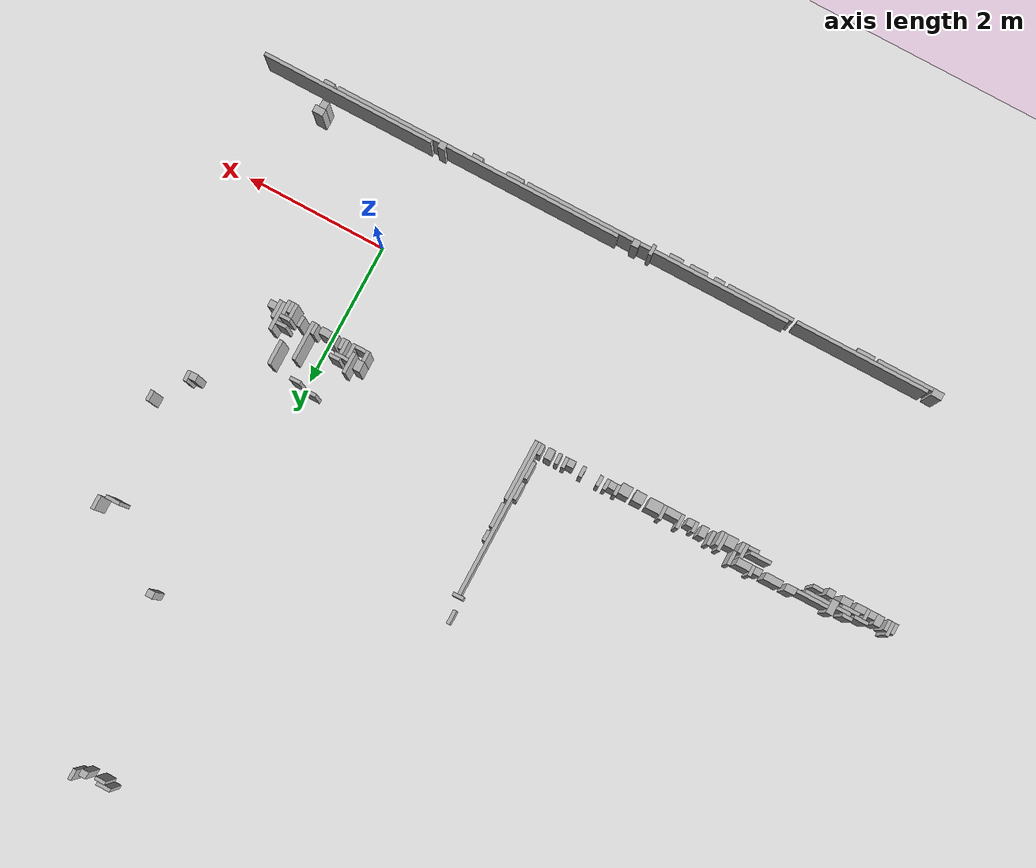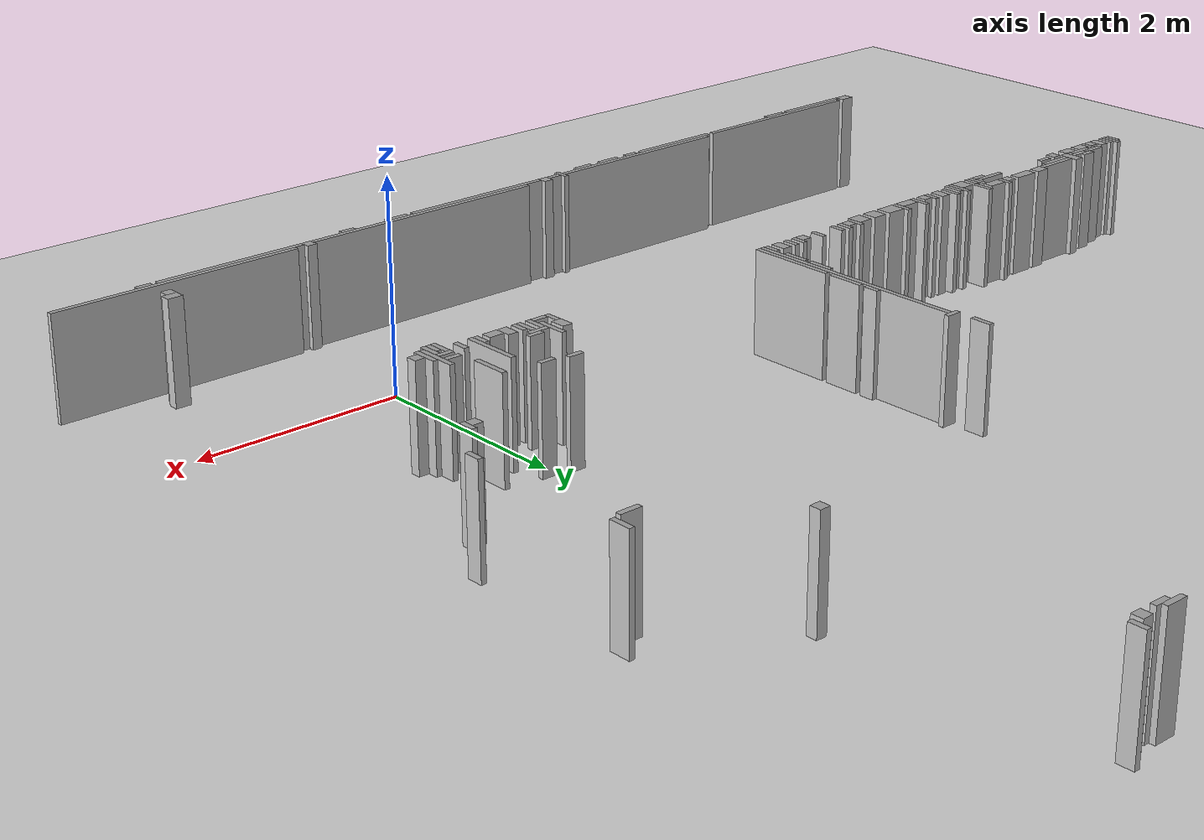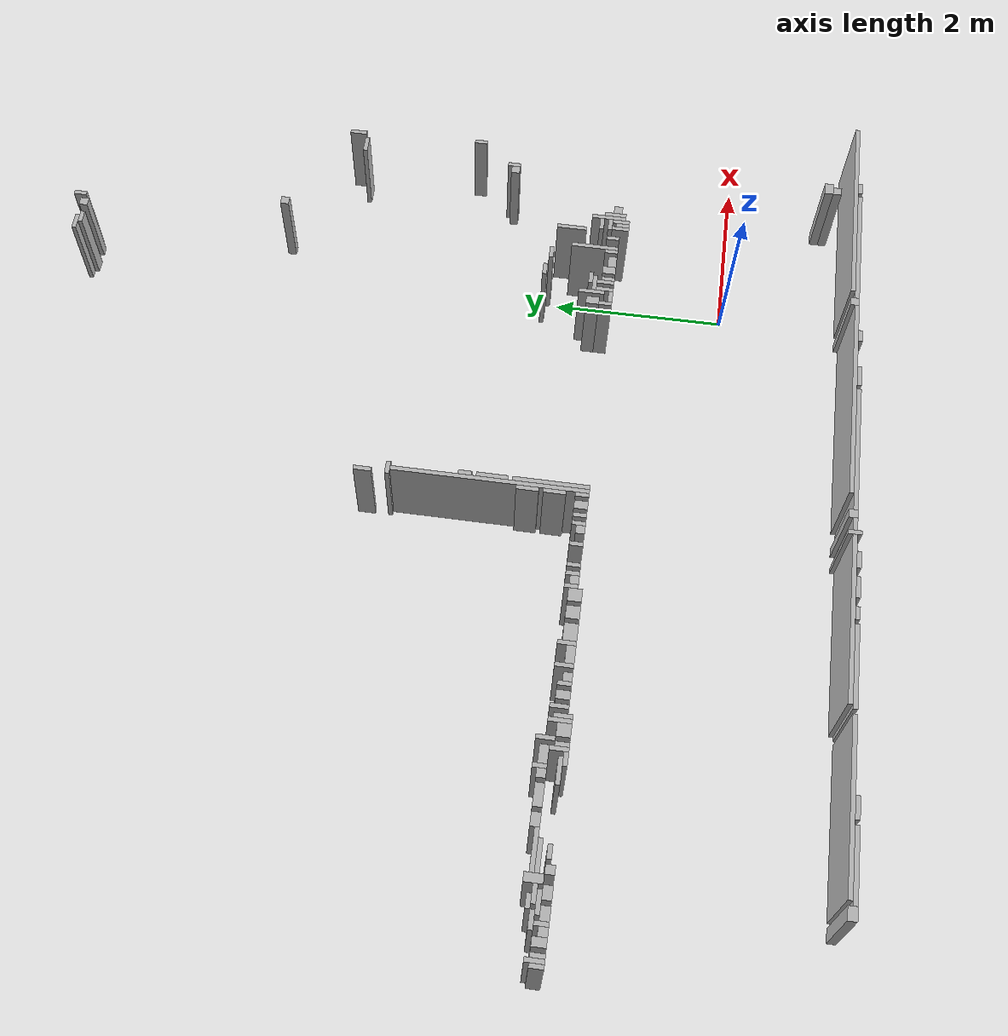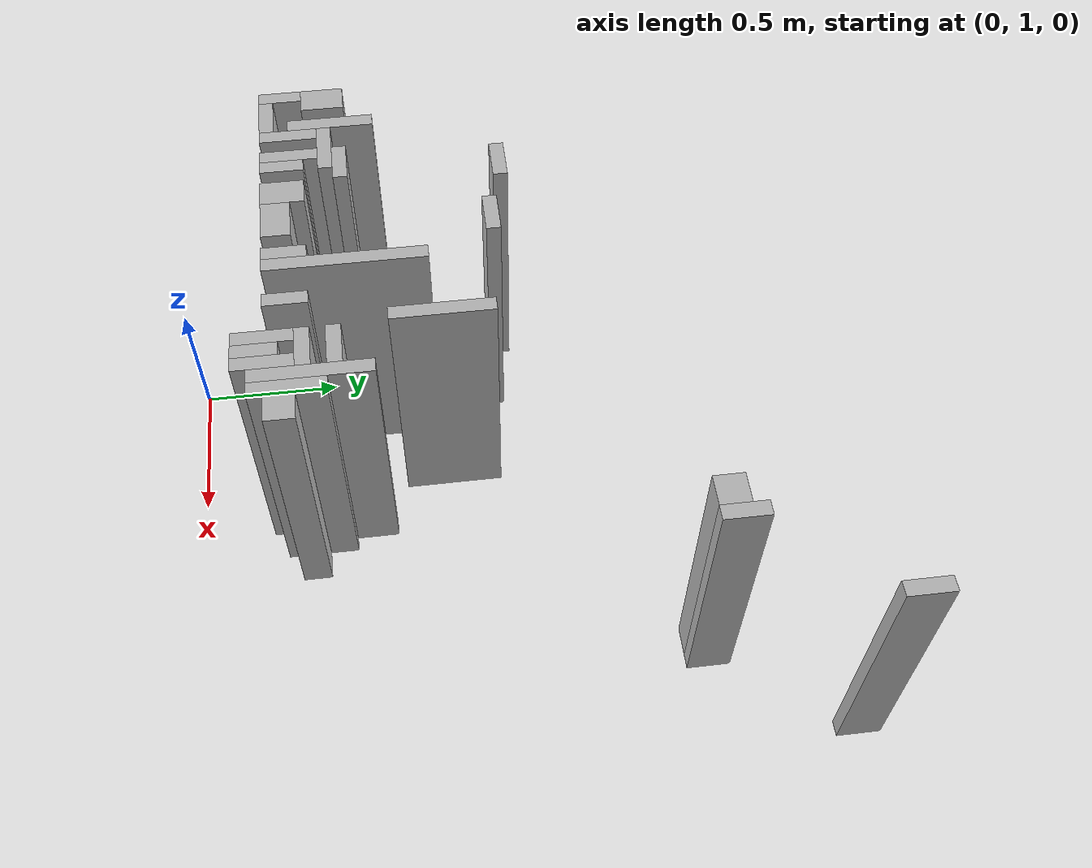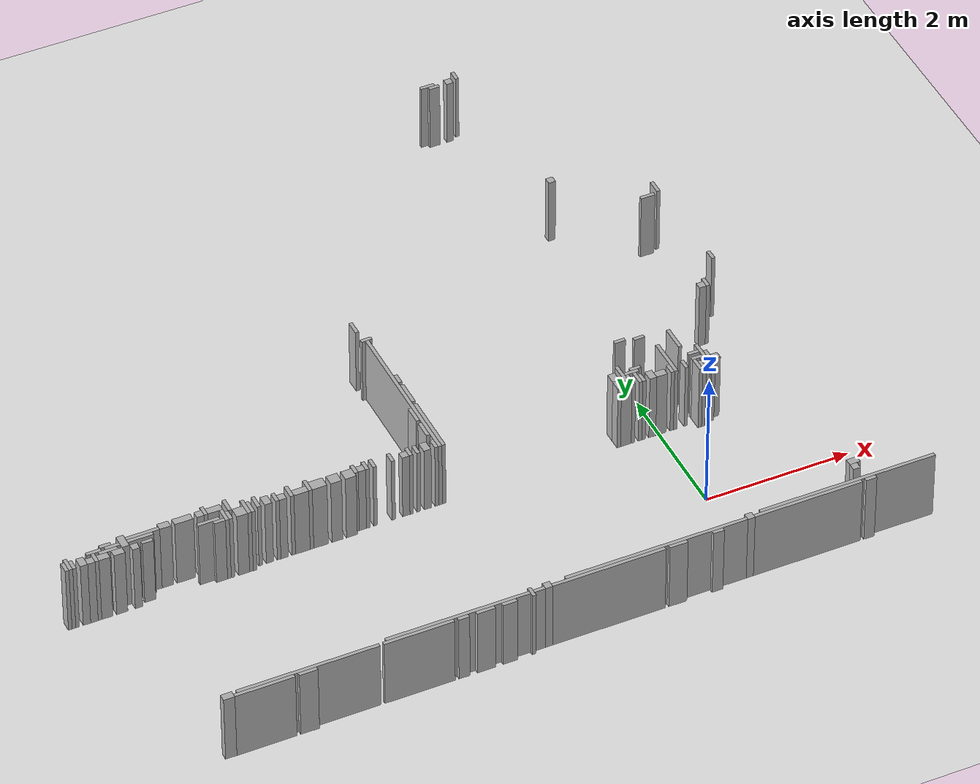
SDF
<sdf version="1.8">
 <world name="building">
  <model name="ground_plane">
   <static>true</static>
   <link name="link">
    <collision name="c"><geometry><plane><normal>0 0 1</normal><size>200 200</size></plane></geometry></collision>
    <visual name="v">
     <geometry><plane><normal>0 0 1</normal><size>200 200</size></plane></geometry>
     <material><ambient>0.9 0.9 0.9 1</ambient><diffuse>0.9 0.9 0.9 1</diffuse></material>
    </visual>
   </link>
  </model>
  <model name="walls">
   <static>true</static>
   <link name="wall_0">
    <pose>0.175 7.875 0.500 0 0 0</pose>
    <collision name="c"><geometry><box><size>0.050 0.150 1.000</size></box></geometry></collision>
    <visual name="v">
     <geometry><box><size>0.050 0.150 1.000</size></box></geometry>
     <material><ambient>0.6 0.6 0.6 1</ambient><diffuse>0.7 0.7 0.7 1</diffuse></material>
    </visual>
   </link>
   <link name="wall_1">
    <pose>-0.250 7.825 0.500 0 0 0</pose>
    <collision name="c"><geometry><box><size>0.200 0.050 1.000</size></box></geometry></collision>
    <visual name="v">
     <geometry><box><size>0.200 0.050 1.000</size></box></geometry>
     <material><ambient>0.6 0.6 0.6 1</ambient><diffuse>0.7 0.7 0.7 1</diffuse></material>
    </visual>
   </link>
   <link name="wall_2">
    <pose>0.050 7.800 0.500 0 0 0</pose>
    <collision name="c"><geometry><box><size>0.100 0.100 1.000</size></box></geometry></collision>
    <visual name="v">
     <geometry><box><size>0.100 0.100 1.000</size></box></geometry>
     <material><ambient>0.6 0.6 0.6 1</ambient><diffuse>0.7 0.7 0.7 1</diffuse></material>
    </visual>
   </link>
   <link name="wall_3">
    <pose>-0.175 7.775 0.500 0 0 0</pose>
    <collision name="c"><geometry><box><size>0.150 0.050 1.000</size></box></geometry></collision>
    <visual name="v">
     <geometry><box><size>0.150 0.050 1.000</size></box></geometry>
     <material><ambient>0.6 0.6 0.6 1</ambient><diffuse>0.7 0.7 0.7 1</diffuse></material>
    </visual>
   </link>
   <link name="wall_4">
    <pose>0.400 5.400 0.500 0 0 0</pose>
    <collision name="c"><geometry><box><size>0.100 0.100 1.000</size></box></geometry></collision>
    <visual name="v">
     <geometry><box><size>0.100 0.100 1.000</size></box></geometry>
     <material><ambient>0.6 0.6 0.6 1</ambient><diffuse>0.7 0.7 0.7 1</diffuse></material>
    </visual>
   </link>
   <link name="wall_5">
    <pose>1.575 4.700 0.500 0 0 0</pose>
    <collision name="c"><geometry><box><size>0.050 0.200 1.000</size></box></geometry></collision>
    <visual name="v">
     <geometry><box><size>0.050 0.200 1.000</size></box></geometry>
     <material><ambient>0.6 0.6 0.6 1</ambient><diffuse>0.7 0.7 0.7 1</diffuse></material>
    </visual>
   </link>
   <link name="wall_6">
    <pose>1.400 4.575 0.500 0 0 0</pose>
    <collision name="c"><geometry><box><size>0.200 0.050 1.000</size></box></geometry></collision>
    <visual name="v">
     <geometry><box><size>0.200 0.050 1.000</size></box></geometry>
     <material><ambient>0.6 0.6 0.6 1</ambient><diffuse>0.7 0.7 0.7 1</diffuse></material>
    </visual>
   </link>
   <link name="wall_9">
    <pose>-3.125 3.850 0.500 0 0 0</pose>
    <collision name="c"><geometry><box><size>0.050 0.200 1.000</size></box></geometry></collision>
    <visual name="v">
     <geometry><box><size>0.050 0.200 1.000</size></box></geometry>
     <material><ambient>0.6 0.6 0.6 1</ambient><diffuse>0.7 0.7 0.7 1</diffuse></material>
    </visual>
   </link>
   <link name="wall_10">
    <pose>-3.075 3.575 0.500 0 0 0</pose>
    <collision name="c"><geometry><box><size>0.150 0.050 1.000</size></box></geometry></collision>
    <visual name="v">
     <geometry><box><size>0.150 0.050 1.000</size></box></geometry>
     <material><ambient>0.6 0.6 0.6 1</ambient><diffuse>0.7 0.7 0.7 1</diffuse></material>
    </visual>
   </link>
   <link name="wall_11">
    <pose>-3.075 2.450 0.500 0 0 0</pose>
    <collision name="c"><geometry><box><size>0.050 2.200 1.000</size></box></geometry></collision>
    <visual name="v">
     <geometry><box><size>0.050 2.200 1.000</size></box></geometry>
     <material><ambient>0.6 0.6 0.6 1</ambient><diffuse>0.7 0.7 0.7 1</diffuse></material>
    </visual>
   </link>
   <link name="wall_13">
    <pose>1.625 3.175 0.500 0 0 0</pose>
    <collision name="c"><geometry><box><size>0.050 0.150 1.000</size></box></geometry></collision>
    <visual name="v">
     <geometry><box><size>0.050 0.150 1.000</size></box></geometry>
     <material><ambient>0.6 0.6 0.6 1</ambient><diffuse>0.7 0.7 0.7 1</diffuse></material>
    </visual>
   </link>
   <link name="wall_19">
    <pose>-3.025 2.725 0.500 0 0 0</pose>
    <collision name="c"><geometry><box><size>0.050 0.150 1.000</size></box></geometry></collision>
    <visual name="v">
     <geometry><box><size>0.050 0.150 1.000</size></box></geometry>
     <material><ambient>0.6 0.6 0.6 1</ambient><diffuse>0.7 0.7 0.7 1</diffuse></material>
    </visual>
   </link>
   <link name="wall_20">
    <pose>1.325 2.725 0.500 0 0 0</pose>
    <collision name="c"><geometry><box><size>0.050 0.150 1.000</size></box></geometry></collision>
    <visual name="v">
     <geometry><box><size>0.050 0.150 1.000</size></box></geometry>
     <material><ambient>0.6 0.6 0.6 1</ambient><diffuse>0.7 0.7 0.7 1</diffuse></material>
    </visual>
   </link>
   <link name="wall_22">
    <pose>1.250 2.700 0.500 0 0 0</pose>
    <collision name="c"><geometry><box><size>0.100 0.100 1.000</size></box></geometry></collision>
    <visual name="v">
     <geometry><box><size>0.100 0.100 1.000</size></box></geometry>
     <material><ambient>0.6 0.6 0.6 1</ambient><diffuse>0.7 0.7 0.7 1</diffuse></material>
    </visual>
   </link>
   <link name="wall_34">
    <pose>-3.025 2.425 0.500 0 0 0</pose>
    <collision name="c"><geometry><box><size>0.050 0.350 1.000</size></box></geometry></collision>
    <visual name="v">
     <geometry><box><size>0.050 0.350 1.000</size></box></geometry>
     <material><ambient>0.6 0.6 0.6 1</ambient><diffuse>0.7 0.7 0.7 1</diffuse></material>
    </visual>
   </link>
   <link name="wall_52">
    <pose>-3.025 1.775 0.500 0 0 0</pose>
    <collision name="c"><geometry><box><size>0.050 0.850 1.000</size></box></geometry></collision>
    <visual name="v">
     <geometry><box><size>0.050 0.850 1.000</size></box></geometry>
     <material><ambient>0.6 0.6 0.6 1</ambient><diffuse>0.7 0.7 0.7 1</diffuse></material>
    </visual>
   </link>
   <link name="wall_53">
    <pose>-0.175 2.175 0.500 0 0 0</pose>
    <collision name="c"><geometry><box><size>0.150 0.050 1.000</size></box></geometry></collision>
    <visual name="v">
     <geometry><box><size>0.150 0.050 1.000</size></box></geometry>
     <material><ambient>0.6 0.6 0.6 1</ambient><diffuse>0.7 0.7 0.7 1</diffuse></material>
    </visual>
   </link>
   <link name="wall_58">
    <pose>-3.125 2.025 0.500 0 0 0</pose>
    <collision name="c"><geometry><box><size>0.050 0.250 1.000</size></box></geometry></collision>
    <visual name="v">
     <geometry><box><size>0.050 0.250 1.000</size></box></geometry>
     <material><ambient>0.6 0.6 0.6 1</ambient><diffuse>0.7 0.7 0.7 1</diffuse></material>
    </visual>
   </link>
   <link name="wall_59">
    <pose>0.075 2.125 0.500 0 0 0</pose>
    <collision name="c"><geometry><box><size>0.150 0.050 1.000</size></box></geometry></collision>
    <visual name="v">
     <geometry><box><size>0.150 0.050 1.000</size></box></geometry>
     <material><ambient>0.6 0.6 0.6 1</ambient><diffuse>0.7 0.7 0.7 1</diffuse></material>
    </visual>
   </link>
   <link name="wall_64">
    <pose>0.475 1.925 0.500 0 0 0</pose>
    <collision name="c"><geometry><box><size>0.050 0.350 1.000</size></box></geometry></collision>
    <visual name="v">
     <geometry><box><size>0.050 0.350 1.000</size></box></geometry>
     <material><ambient>0.6 0.6 0.6 1</ambient><diffuse>0.7 0.7 0.7 1</diffuse></material>
    </visual>
   </link>
   <link name="wall_86">
    <pose>0.225 1.625 0.500 0 0 0</pose>
    <collision name="c"><geometry><box><size>0.050 0.550 1.000</size></box></geometry></collision>
    <visual name="v">
     <geometry><box><size>0.050 0.550 1.000</size></box></geometry>
     <material><ambient>0.6 0.6 0.6 1</ambient><diffuse>0.7 0.7 0.7 1</diffuse></material>
    </visual>
   </link>
   <link name="wall_90">
    <pose>-3.125 1.725 0.500 0 0 0</pose>
    <collision name="c"><geometry><box><size>0.050 0.250 1.000</size></box></geometry></collision>
    <visual name="v">
     <geometry><box><size>0.050 0.250 1.000</size></box></geometry>
     <material><ambient>0.6 0.6 0.6 1</ambient><diffuse>0.7 0.7 0.7 1</diffuse></material>
    </visual>
   </link>
   <link name="wall_96">
    <pose>-0.425 1.600 0.500 0 0 0</pose>
    <collision name="c"><geometry><box><size>0.050 0.300 1.000</size></box></geometry></collision>
    <visual name="v">
     <geometry><box><size>0.050 0.300 1.000</size></box></geometry>
     <material><ambient>0.6 0.6 0.6 1</ambient><diffuse>0.7 0.7 0.7 1</diffuse></material>
    </visual>
   </link>
   <link name="wall_101">
    <pose>0.675 1.500 0.500 0 0 0</pose>
    <collision name="c"><geometry><box><size>0.050 0.400 1.000</size></box></geometry></collision>
    <visual name="v">
     <geometry><box><size>0.050 0.400 1.000</size></box></geometry>
     <material><ambient>0.6 0.6 0.6 1</ambient><diffuse>0.7 0.7 0.7 1</diffuse></material>
    </visual>
   </link>
   <link name="wall_117">
    <pose>-0.550 1.575 0.500 0 0 0</pose>
    <collision name="c"><geometry><box><size>0.100 0.150 1.000</size></box></geometry></collision>
    <visual name="v">
     <geometry><box><size>0.100 0.150 1.000</size></box></geometry>
     <material><ambient>0.6 0.6 0.6 1</ambient><diffuse>0.7 0.7 0.7 1</diffuse></material>
    </visual>
   </link>
   <link name="wall_118">
    <pose>-0.225 1.625 0.500 0 0 0</pose>
    <collision name="c"><geometry><box><size>0.150 0.050 1.000</size></box></geometry></collision>
    <visual name="v">
     <geometry><box><size>0.150 0.050 1.000</size></box></geometry>
     <material><ambient>0.6 0.6 0.6 1</ambient><diffuse>0.7 0.7 0.7 1</diffuse></material>
    </visual>
   </link>
   <link name="wall_143">
    <pose>-6.225 1.525 0.500 0 0 0</pose>
    <collision name="c"><geometry><box><size>0.050 0.150 1.000</size></box></geometry></collision>
    <visual name="v">
     <geometry><box><size>0.050 0.150 1.000</size></box></geometry>
     <material><ambient>0.6 0.6 0.6 1</ambient><diffuse>0.7 0.7 0.7 1</diffuse></material>
    </visual>
   </link>
   <link name="wall_144">
    <pose>-5.925 1.500 0.500 0 0 0</pose>
    <collision name="c"><geometry><box><size>0.050 0.200 1.000</size></box></geometry></collision>
    <visual name="v">
     <geometry><box><size>0.050 0.200 1.000</size></box></geometry>
     <material><ambient>0.6 0.6 0.6 1</ambient><diffuse>0.7 0.7 0.7 1</diffuse></material>
    </visual>
   </link>
   <link name="wall_145">
    <pose>-0.300 1.575 0.500 0 0 0</pose>
    <collision name="c"><geometry><box><size>0.200 0.050 1.000</size></box></geometry></collision>
    <visual name="v">
     <geometry><box><size>0.200 0.050 1.000</size></box></geometry>
     <material><ambient>0.6 0.6 0.6 1</ambient><diffuse>0.7 0.7 0.7 1</diffuse></material>
    </visual>
   </link>
   <link name="wall_146">
    <pose>0.575 1.575 0.500 0 0 0</pose>
    <collision name="c"><geometry><box><size>0.150 0.050 1.000</size></box></geometry></collision>
    <visual name="v">
     <geometry><box><size>0.150 0.050 1.000</size></box></geometry>
     <material><ambient>0.6 0.6 0.6 1</ambient><diffuse>0.7 0.7 0.7 1</diffuse></material>
    </visual>
   </link>
   <link name="wall_173">
    <pose>-7.350 1.450 0.500 0 0 0</pose>
    <collision name="c"><geometry><box><size>0.100 0.200 1.000</size></box></geometry></collision>
    <visual name="v">
     <geometry><box><size>0.100 0.200 1.000</size></box></geometry>
     <material><ambient>0.6 0.6 0.6 1</ambient><diffuse>0.7 0.7 0.7 1</diffuse></material>
    </visual>
   </link>
   <link name="wall_174">
    <pose>-6.775 1.500 0.500 0 0 0</pose>
    <collision name="c"><geometry><box><size>0.150 0.100 1.000</size></box></geometry></collision>
    <visual name="v">
     <geometry><box><size>0.150 0.100 1.000</size></box></geometry>
     <material><ambient>0.6 0.6 0.6 1</ambient><diffuse>0.7 0.7 0.7 1</diffuse></material>
    </visual>
   </link>
   <link name="wall_175">
    <pose>-6.525 1.500 0.500 0 0 0</pose>
    <collision name="c"><geometry><box><size>0.250 0.100 1.000</size></box></geometry></collision>
    <visual name="v">
     <geometry><box><size>0.250 0.100 1.000</size></box></geometry>
     <material><ambient>0.6 0.6 0.6 1</ambient><diffuse>0.7 0.7 0.7 1</diffuse></material>
    </visual>
   </link>
   <link name="wall_176">
    <pose>-6.300 1.500 0.500 0 0 0</pose>
    <collision name="c"><geometry><box><size>0.100 0.100 1.000</size></box></geometry></collision>
    <visual name="v">
     <geometry><box><size>0.100 0.100 1.000</size></box></geometry>
     <material><ambient>0.6 0.6 0.6 1</ambient><diffuse>0.7 0.7 0.7 1</diffuse></material>
    </visual>
   </link>
   <link name="wall_177">
    <pose>-6.100 1.500 0.500 0 0 0</pose>
    <collision name="c"><geometry><box><size>0.200 0.100 1.000</size></box></geometry></collision>
    <visual name="v">
     <geometry><box><size>0.200 0.100 1.000</size></box></geometry>
     <material><ambient>0.6 0.6 0.6 1</ambient><diffuse>0.7 0.7 0.7 1</diffuse></material>
    </visual>
   </link>
   <link name="wall_178">
    <pose>-0.375 1.450 0.500 0 0 0</pose>
    <collision name="c"><geometry><box><size>0.050 0.200 1.000</size></box></geometry></collision>
    <visual name="v">
     <geometry><box><size>0.050 0.200 1.000</size></box></geometry>
     <material><ambient>0.6 0.6 0.6 1</ambient><diffuse>0.7 0.7 0.7 1</diffuse></material>
    </visual>
   </link>
   <link name="wall_179">
    <pose>-0.275 1.450 0.500 0 0 0</pose>
    <collision name="c"><geometry><box><size>0.050 0.200 1.000</size></box></geometry></collision>
    <visual name="v">
     <geometry><box><size>0.050 0.200 1.000</size></box></geometry>
     <material><ambient>0.6 0.6 0.6 1</ambient><diffuse>0.7 0.7 0.7 1</diffuse></material>
    </visual>
   </link>
   <link name="wall_180">
    <pose>0.725 1.425 0.500 0 0 0</pose>
    <collision name="c"><geometry><box><size>0.050 0.250 1.000</size></box></geometry></collision>
    <visual name="v">
     <geometry><box><size>0.050 0.250 1.000</size></box></geometry>
     <material><ambient>0.6 0.6 0.6 1</ambient><diffuse>0.7 0.7 0.7 1</diffuse></material>
    </visual>
   </link>
   <link name="wall_194">
    <pose>-7.575 1.475 0.500 0 0 0</pose>
    <collision name="c"><geometry><box><size>0.150 0.050 1.000</size></box></geometry></collision>
    <visual name="v">
     <geometry><box><size>0.150 0.050 1.000</size></box></geometry>
     <material><ambient>0.6 0.6 0.6 1</ambient><diffuse>0.7 0.7 0.7 1</diffuse></material>
    </visual>
   </link>
   <link name="wall_195">
    <pose>-7.075 1.475 0.500 0 0 0</pose>
    <collision name="c"><geometry><box><size>0.450 0.050 1.000</size></box></geometry></collision>
    <visual name="v">
     <geometry><box><size>0.450 0.050 1.000</size></box></geometry>
     <material><ambient>0.6 0.6 0.6 1</ambient><diffuse>0.7 0.7 0.7 1</diffuse></material>
    </visual>
   </link>
   <link name="wall_196">
    <pose>-5.725 1.375 0.500 0 0 0</pose>
    <collision name="c"><geometry><box><size>0.050 0.250 1.000</size></box></geometry></collision>
    <visual name="v">
     <geometry><box><size>0.050 0.250 1.000</size></box></geometry>
     <material><ambient>0.6 0.6 0.6 1</ambient><diffuse>0.7 0.7 0.7 1</diffuse></material>
    </visual>
   </link>
   <link name="wall_197">
    <pose>-5.575 1.400 0.500 0 0 0</pose>
    <collision name="c"><geometry><box><size>0.050 0.200 1.000</size></box></geometry></collision>
    <visual name="v">
     <geometry><box><size>0.050 0.200 1.000</size></box></geometry>
     <material><ambient>0.6 0.6 0.6 1</ambient><diffuse>0.7 0.7 0.7 1</diffuse></material>
    </visual>
   </link>
   <link name="wall_198">
    <pose>-5.125 1.400 0.500 0 0 0</pose>
    <collision name="c"><geometry><box><size>0.050 0.200 1.000</size></box></geometry></collision>
    <visual name="v">
     <geometry><box><size>0.050 0.200 1.000</size></box></geometry>
     <material><ambient>0.6 0.6 0.6 1</ambient><diffuse>0.7 0.7 0.7 1</diffuse></material>
    </visual>
   </link>
   <link name="wall_199">
    <pose>-4.875 1.400 0.500 0 0 0</pose>
    <collision name="c"><geometry><box><size>0.050 0.200 1.000</size></box></geometry></collision>
    <visual name="v">
     <geometry><box><size>0.050 0.200 1.000</size></box></geometry>
     <material><ambient>0.6 0.6 0.6 1</ambient><diffuse>0.7 0.7 0.7 1</diffuse></material>
    </visual>
   </link>
   <link name="wall_200">
    <pose>-4.225 1.425 0.500 0 0 0</pose>
    <collision name="c"><geometry><box><size>0.050 0.150 1.000</size></box></geometry></collision>
    <visual name="v">
     <geometry><box><size>0.050 0.150 1.000</size></box></geometry>
     <material><ambient>0.6 0.6 0.6 1</ambient><diffuse>0.7 0.7 0.7 1</diffuse></material>
    </visual>
   </link>
   <link name="wall_201">
    <pose>-4.075 1.425 0.500 0 0 0</pose>
    <collision name="c"><geometry><box><size>0.050 0.150 1.000</size></box></geometry></collision>
    <visual name="v">
     <geometry><box><size>0.050 0.150 1.000</size></box></geometry>
     <material><ambient>0.6 0.6 0.6 1</ambient><diffuse>0.7 0.7 0.7 1</diffuse></material>
    </visual>
   </link>
   <link name="wall_202">
    <pose>-3.975 1.425 0.500 0 0 0</pose>
    <collision name="c"><geometry><box><size>0.050 0.150 1.000</size></box></geometry></collision>
    <visual name="v">
     <geometry><box><size>0.050 0.150 1.000</size></box></geometry>
     <material><ambient>0.6 0.6 0.6 1</ambient><diffuse>0.7 0.7 0.7 1</diffuse></material>
    </visual>
   </link>
   <link name="wall_203">
    <pose>-3.725 1.425 0.500 0 0 0</pose>
    <collision name="c"><geometry><box><size>0.050 0.150 1.000</size></box></geometry></collision>
    <visual name="v">
     <geometry><box><size>0.050 0.150 1.000</size></box></geometry>
     <material><ambient>0.6 0.6 0.6 1</ambient><diffuse>0.7 0.7 0.7 1</diffuse></material>
    </visual>
   </link>
   <link name="wall_204">
    <pose>-3.475 1.425 0.500 0 0 0</pose>
    <collision name="c"><geometry><box><size>0.050 0.150 1.000</size></box></geometry></collision>
    <visual name="v">
     <geometry><box><size>0.050 0.150 1.000</size></box></geometry>
     <material><ambient>0.6 0.6 0.6 1</ambient><diffuse>0.7 0.7 0.7 1</diffuse></material>
    </visual>
   </link>
   <link name="wall_205">
    <pose>-3.375 1.425 0.500 0 0 0</pose>
    <collision name="c"><geometry><box><size>0.050 0.150 1.000</size></box></geometry></collision>
    <visual name="v">
     <geometry><box><size>0.050 0.150 1.000</size></box></geometry>
     <material><ambient>0.6 0.6 0.6 1</ambient><diffuse>0.7 0.7 0.7 1</diffuse></material>
    </visual>
   </link>
   <link name="wall_206">
    <pose>-3.250 1.425 0.500 0 0 0</pose>
    <collision name="c"><geometry><box><size>0.100 0.150 1.000</size></box></geometry></collision>
    <visual name="v">
     <geometry><box><size>0.100 0.150 1.000</size></box></geometry>
     <material><ambient>0.6 0.6 0.6 1</ambient><diffuse>0.7 0.7 0.7 1</diffuse></material>
    </visual>
   </link>
   <link name="wall_207">
    <pose>-3.125 1.425 0.500 0 0 0</pose>
    <collision name="c"><geometry><box><size>0.050 0.150 1.000</size></box></geometry></collision>
    <visual name="v">
     <geometry><box><size>0.050 0.150 1.000</size></box></geometry>
     <material><ambient>0.6 0.6 0.6 1</ambient><diffuse>0.7 0.7 0.7 1</diffuse></material>
    </visual>
   </link>
   <link name="wall_208">
    <pose>-0.575 1.425 0.500 0 0 0</pose>
    <collision name="c"><geometry><box><size>0.050 0.150 1.000</size></box></geometry></collision>
    <visual name="v">
     <geometry><box><size>0.050 0.150 1.000</size></box></geometry>
     <material><ambient>0.6 0.6 0.6 1</ambient><diffuse>0.7 0.7 0.7 1</diffuse></material>
    </visual>
   </link>
   <link name="wall_209">
    <pose>-0.225 1.425 0.500 0 0 0</pose>
    <collision name="c"><geometry><box><size>0.050 0.150 1.000</size></box></geometry></collision>
    <visual name="v">
     <geometry><box><size>0.050 0.150 1.000</size></box></geometry>
     <material><ambient>0.6 0.6 0.6 1</ambient><diffuse>0.7 0.7 0.7 1</diffuse></material>
    </visual>
   </link>
   <link name="wall_210">
    <pose>-0.100 1.425 0.500 0 0 0</pose>
    <collision name="c"><geometry><box><size>0.100 0.150 1.000</size></box></geometry></collision>
    <visual name="v">
     <geometry><box><size>0.100 0.150 1.000</size></box></geometry>
     <material><ambient>0.6 0.6 0.6 1</ambient><diffuse>0.7 0.7 0.7 1</diffuse></material>
    </visual>
   </link>
   <link name="wall_211">
    <pose>0.175 1.425 0.500 0 0 0</pose>
    <collision name="c"><geometry><box><size>0.050 0.150 1.000</size></box></geometry></collision>
    <visual name="v">
     <geometry><box><size>0.050 0.150 1.000</size></box></geometry>
     <material><ambient>0.6 0.6 0.6 1</ambient><diffuse>0.7 0.7 0.7 1</diffuse></material>
    </visual>
   </link>
   <link name="wall_212">
    <pose>0.375 1.425 0.500 0 0 0</pose>
    <collision name="c"><geometry><box><size>0.050 0.150 1.000</size></box></geometry></collision>
    <visual name="v">
     <geometry><box><size>0.050 0.150 1.000</size></box></geometry>
     <material><ambient>0.6 0.6 0.6 1</ambient><diffuse>0.7 0.7 0.7 1</diffuse></material>
    </visual>
   </link>
   <link name="wall_213">
    <pose>0.575 1.475 0.500 0 0 0</pose>
    <collision name="c"><geometry><box><size>0.150 0.050 1.000</size></box></geometry></collision>
    <visual name="v">
     <geometry><box><size>0.150 0.050 1.000</size></box></geometry>
     <material><ambient>0.6 0.6 0.6 1</ambient><diffuse>0.7 0.7 0.7 1</diffuse></material>
    </visual>
   </link>
   <link name="wall_216">
    <pose>-8.125 1.350 0.500 0 0 0</pose>
    <collision name="c"><geometry><box><size>0.050 0.200 1.000</size></box></geometry></collision>
    <visual name="v">
     <geometry><box><size>0.050 0.200 1.000</size></box></geometry>
     <material><ambient>0.6 0.6 0.6 1</ambient><diffuse>0.7 0.7 0.7 1</diffuse></material>
    </visual>
   </link>
   <link name="wall_217">
    <pose>-7.750 1.425 0.500 0 0 0</pose>
    <collision name="c"><geometry><box><size>0.200 0.050 1.000</size></box></geometry></collision>
    <visual name="v">
     <geometry><box><size>0.200 0.050 1.000</size></box></geometry>
     <material><ambient>0.6 0.6 0.6 1</ambient><diffuse>0.7 0.7 0.7 1</diffuse></material>
    </visual>
   </link>
   <link name="wall_218">
    <pose>-7.500 1.425 0.500 0 0 0</pose>
    <collision name="c"><geometry><box><size>0.200 0.050 1.000</size></box></geometry></collision>
    <visual name="v">
     <geometry><box><size>0.200 0.050 1.000</size></box></geometry>
     <material><ambient>0.6 0.6 0.6 1</ambient><diffuse>0.7 0.7 0.7 1</diffuse></material>
    </visual>
   </link>
   <link name="wall_219">
    <pose>-7.125 1.425 0.500 0 0 0</pose>
    <collision name="c"><geometry><box><size>0.350 0.050 1.000</size></box></geometry></collision>
    <visual name="v">
     <geometry><box><size>0.350 0.050 1.000</size></box></geometry>
     <material><ambient>0.6 0.6 0.6 1</ambient><diffuse>0.7 0.7 0.7 1</diffuse></material>
    </visual>
   </link>
   <link name="wall_220">
    <pose>-6.025 1.350 0.500 0 0 0</pose>
    <collision name="c"><geometry><box><size>0.050 0.200 1.000</size></box></geometry></collision>
    <visual name="v">
     <geometry><box><size>0.050 0.200 1.000</size></box></geometry>
     <material><ambient>0.6 0.6 0.6 1</ambient><diffuse>0.7 0.7 0.7 1</diffuse></material>
    </visual>
   </link>
   <link name="wall_221">
    <pose>-5.675 1.350 0.500 0 0 0</pose>
    <collision name="c"><geometry><box><size>0.050 0.200 1.000</size></box></geometry></collision>
    <visual name="v">
     <geometry><box><size>0.050 0.200 1.000</size></box></geometry>
     <material><ambient>0.6 0.6 0.6 1</ambient><diffuse>0.7 0.7 0.7 1</diffuse></material>
    </visual>
   </link>
   <link name="wall_222">
    <pose>-5.450 1.375 0.500 0 0 0</pose>
    <collision name="c"><geometry><box><size>0.100 0.150 1.000</size></box></geometry></collision>
    <visual name="v">
     <geometry><box><size>0.100 0.150 1.000</size></box></geometry>
     <material><ambient>0.6 0.6 0.6 1</ambient><diffuse>0.7 0.7 0.7 1</diffuse></material>
    </visual>
   </link>
   <link name="wall_223">
    <pose>-5.325 1.375 0.500 0 0 0</pose>
    <collision name="c"><geometry><box><size>0.050 0.150 1.000</size></box></geometry></collision>
    <visual name="v">
     <geometry><box><size>0.050 0.150 1.000</size></box></geometry>
     <material><ambient>0.6 0.6 0.6 1</ambient><diffuse>0.7 0.7 0.7 1</diffuse></material>
    </visual>
   </link>
   <link name="wall_224">
    <pose>-4.750 1.375 0.500 0 0 0</pose>
    <collision name="c"><geometry><box><size>0.200 0.150 1.000</size></box></geometry></collision>
    <visual name="v">
     <geometry><box><size>0.200 0.150 1.000</size></box></geometry>
     <material><ambient>0.6 0.6 0.6 1</ambient><diffuse>0.7 0.7 0.7 1</diffuse></material>
    </visual>
   </link>
   <link name="wall_225">
    <pose>-4.525 1.375 0.500 0 0 0</pose>
    <collision name="c"><geometry><box><size>0.150 0.150 1.000</size></box></geometry></collision>
    <visual name="v">
     <geometry><box><size>0.150 0.150 1.000</size></box></geometry>
     <material><ambient>0.6 0.6 0.6 1</ambient><diffuse>0.7 0.7 0.7 1</diffuse></material>
    </visual>
   </link>
   <link name="wall_226">
    <pose>-4.325 1.375 0.500 0 0 0</pose>
    <collision name="c"><geometry><box><size>0.150 0.150 1.000</size></box></geometry></collision>
    <visual name="v">
     <geometry><box><size>0.150 0.150 1.000</size></box></geometry>
     <material><ambient>0.6 0.6 0.6 1</ambient><diffuse>0.7 0.7 0.7 1</diffuse></material>
    </visual>
   </link>
   <link name="wall_227">
    <pose>-4.150 1.400 0.500 0 0 0</pose>
    <collision name="c"><geometry><box><size>0.100 0.100 1.000</size></box></geometry></collision>
    <visual name="v">
     <geometry><box><size>0.100 0.100 1.000</size></box></geometry>
     <material><ambient>0.6 0.6 0.6 1</ambient><diffuse>0.7 0.7 0.7 1</diffuse></material>
    </visual>
   </link>
   <link name="wall_228">
    <pose>-3.550 1.400 0.500 0 0 0</pose>
    <collision name="c"><geometry><box><size>0.100 0.100 1.000</size></box></geometry></collision>
    <visual name="v">
     <geometry><box><size>0.100 0.100 1.000</size></box></geometry>
     <material><ambient>0.6 0.6 0.6 1</ambient><diffuse>0.7 0.7 0.7 1</diffuse></material>
    </visual>
   </link>
   <link name="wall_229">
    <pose>0.025 1.400 0.500 0 0 0</pose>
    <collision name="c"><geometry><box><size>0.150 0.100 1.000</size></box></geometry></collision>
    <visual name="v">
     <geometry><box><size>0.150 0.100 1.000</size></box></geometry>
     <material><ambient>0.6 0.6 0.6 1</ambient><diffuse>0.7 0.7 0.7 1</diffuse></material>
    </visual>
   </link>
   <link name="wall_230">
    <pose>0.525 1.350 0.500 0 0 0</pose>
    <collision name="c"><geometry><box><size>0.050 0.200 1.000</size></box></geometry></collision>
    <visual name="v">
     <geometry><box><size>0.050 0.200 1.000</size></box></geometry>
     <material><ambient>0.6 0.6 0.6 1</ambient><diffuse>0.7 0.7 0.7 1</diffuse></material>
    </visual>
   </link>
   <link name="wall_231">
    <pose>0.625 1.350 0.500 0 0 0</pose>
    <collision name="c"><geometry><box><size>0.050 0.200 1.000</size></box></geometry></collision>
    <visual name="v">
     <geometry><box><size>0.050 0.200 1.000</size></box></geometry>
     <material><ambient>0.6 0.6 0.6 1</ambient><diffuse>0.7 0.7 0.7 1</diffuse></material>
    </visual>
   </link>
   <link name="wall_232">
    <pose>0.800 1.400 0.500 0 0 0</pose>
    <collision name="c"><geometry><box><size>0.100 0.100 1.000</size></box></geometry></collision>
    <visual name="v">
     <geometry><box><size>0.100 0.100 1.000</size></box></geometry>
     <material><ambient>0.6 0.6 0.6 1</ambient><diffuse>0.7 0.7 0.7 1</diffuse></material>
    </visual>
   </link>
   <link name="wall_236">
    <pose>-8.175 1.325 0.500 0 0 0</pose>
    <collision name="c"><geometry><box><size>0.050 0.150 1.000</size></box></geometry></collision>
    <visual name="v">
     <geometry><box><size>0.050 0.150 1.000</size></box></geometry>
     <material><ambient>0.6 0.6 0.6 1</ambient><diffuse>0.7 0.7 0.7 1</diffuse></material>
    </visual>
   </link>
   <link name="wall_237">
    <pose>-8.075 1.325 0.500 0 0 0</pose>
    <collision name="c"><geometry><box><size>0.050 0.150 1.000</size></box></geometry></collision>
    <visual name="v">
     <geometry><box><size>0.050 0.150 1.000</size></box></geometry>
     <material><ambient>0.6 0.6 0.6 1</ambient><diffuse>0.7 0.7 0.7 1</diffuse></material>
    </visual>
   </link>
   <link name="wall_238">
    <pose>-7.950 1.325 0.500 0 0 0</pose>
    <collision name="c"><geometry><box><size>0.100 0.150 1.000</size></box></geometry></collision>
    <visual name="v">
     <geometry><box><size>0.100 0.150 1.000</size></box></geometry>
     <material><ambient>0.6 0.6 0.6 1</ambient><diffuse>0.7 0.7 0.7 1</diffuse></material>
    </visual>
   </link>
   <link name="wall_239">
    <pose>-7.775 1.325 0.500 0 0 0</pose>
    <collision name="c"><geometry><box><size>0.050 0.150 1.000</size></box></geometry></collision>
    <visual name="v">
     <geometry><box><size>0.050 0.150 1.000</size></box></geometry>
     <material><ambient>0.6 0.6 0.6 1</ambient><diffuse>0.7 0.7 0.7 1</diffuse></material>
    </visual>
   </link>
   <link name="wall_240">
    <pose>-7.575 1.375 0.500 0 0 0</pose>
    <collision name="c"><geometry><box><size>0.250 0.050 1.000</size></box></geometry></collision>
    <visual name="v">
     <geometry><box><size>0.250 0.050 1.000</size></box></geometry>
     <material><ambient>0.6 0.6 0.6 1</ambient><diffuse>0.7 0.7 0.7 1</diffuse></material>
    </visual>
   </link>
   <link name="wall_241">
    <pose>-5.975 1.325 0.500 0 0 0</pose>
    <collision name="c"><geometry><box><size>0.050 0.150 1.000</size></box></geometry></collision>
    <visual name="v">
     <geometry><box><size>0.050 0.150 1.000</size></box></geometry>
     <material><ambient>0.6 0.6 0.6 1</ambient><diffuse>0.7 0.7 0.7 1</diffuse></material>
    </visual>
   </link>
   <link name="wall_242">
    <pose>-5.825 1.325 0.500 0 0 0</pose>
    <collision name="c"><geometry><box><size>0.150 0.150 1.000</size></box></geometry></collision>
    <visual name="v">
     <geometry><box><size>0.150 0.150 1.000</size></box></geometry>
     <material><ambient>0.6 0.6 0.6 1</ambient><diffuse>0.7 0.7 0.7 1</diffuse></material>
    </visual>
   </link>
   <link name="wall_243">
    <pose>-5.250 1.350 0.500 0 0 0</pose>
    <collision name="c"><geometry><box><size>0.100 0.100 1.000</size></box></geometry></collision>
    <visual name="v">
     <geometry><box><size>0.100 0.100 1.000</size></box></geometry>
     <material><ambient>0.6 0.6 0.6 1</ambient><diffuse>0.7 0.7 0.7 1</diffuse></material>
    </visual>
   </link>
   <link name="wall_244">
    <pose>-5.000 1.350 0.500 0 0 0</pose>
    <collision name="c"><geometry><box><size>0.200 0.100 1.000</size></box></geometry></collision>
    <visual name="v">
     <geometry><box><size>0.200 0.100 1.000</size></box></geometry>
     <material><ambient>0.6 0.6 0.6 1</ambient><diffuse>0.7 0.7 0.7 1</diffuse></material>
    </visual>
   </link>
   <link name="wall_245">
    <pose>-0.475 1.375 0.500 0 0 0</pose>
    <collision name="c"><geometry><box><size>0.150 0.050 1.000</size></box></geometry></collision>
    <visual name="v">
     <geometry><box><size>0.150 0.050 1.000</size></box></geometry>
     <material><ambient>0.6 0.6 0.6 1</ambient><diffuse>0.7 0.7 0.7 1</diffuse></material>
    </visual>
   </link>
   <link name="wall_246">
    <pose>0.575 1.325 0.500 0 0 0</pose>
    <collision name="c"><geometry><box><size>0.050 0.150 1.000</size></box></geometry></collision>
    <visual name="v">
     <geometry><box><size>0.050 0.150 1.000</size></box></geometry>
     <material><ambient>0.6 0.6 0.6 1</ambient><diffuse>0.7 0.7 0.7 1</diffuse></material>
    </visual>
   </link>
   <link name="wall_253">
    <pose>-7.850 1.300 0.500 0 0 0</pose>
    <collision name="c"><geometry><box><size>0.100 0.100 1.000</size></box></geometry></collision>
    <visual name="v">
     <geometry><box><size>0.100 0.100 1.000</size></box></geometry>
     <material><ambient>0.6 0.6 0.6 1</ambient><diffuse>0.7 0.7 0.7 1</diffuse></material>
    </visual>
   </link>
   <link name="wall_254">
    <pose>-7.675 1.300 0.500 0 0 0</pose>
    <collision name="c"><geometry><box><size>0.150 0.100 1.000</size></box></geometry></collision>
    <visual name="v">
     <geometry><box><size>0.150 0.100 1.000</size></box></geometry>
     <material><ambient>0.6 0.6 0.6 1</ambient><diffuse>0.7 0.7 0.7 1</diffuse></material>
    </visual>
   </link>
   <link name="wall_255">
    <pose>-7.475 1.300 0.500 0 0 0</pose>
    <collision name="c"><geometry><box><size>0.150 0.100 1.000</size></box></geometry></collision>
    <visual name="v">
     <geometry><box><size>0.150 0.100 1.000</size></box></geometry>
     <material><ambient>0.6 0.6 0.6 1</ambient><diffuse>0.7 0.7 0.7 1</diffuse></material>
    </visual>
   </link>
   <link name="wall_256">
    <pose>-7.250 1.300 0.500 0 0 0</pose>
    <collision name="c"><geometry><box><size>0.100 0.100 1.000</size></box></geometry></collision>
    <visual name="v">
     <geometry><box><size>0.100 0.100 1.000</size></box></geometry>
     <material><ambient>0.6 0.6 0.6 1</ambient><diffuse>0.7 0.7 0.7 1</diffuse></material>
    </visual>
   </link>
   <link name="wall_257">
    <pose>-7.075 1.325 0.500 0 0 0</pose>
    <collision name="c"><geometry><box><size>0.150 0.050 1.000</size></box></geometry></collision>
    <visual name="v">
     <geometry><box><size>0.150 0.050 1.000</size></box></geometry>
     <material><ambient>0.6 0.6 0.6 1</ambient><diffuse>0.7 0.7 0.7 1</diffuse></material>
    </visual>
   </link>
   <link name="wall_258">
    <pose>-6.250 1.325 0.500 0 0 0</pose>
    <collision name="c"><geometry><box><size>0.300 0.050 1.000</size></box></geometry></collision>
    <visual name="v">
     <geometry><box><size>0.300 0.050 1.000</size></box></geometry>
     <material><ambient>0.6 0.6 0.6 1</ambient><diffuse>0.7 0.7 0.7 1</diffuse></material>
    </visual>
   </link>
   <link name="wall_269">
    <pose>-6.125 1.275 0.500 0 0 0</pose>
    <collision name="c"><geometry><box><size>0.150 0.050 1.000</size></box></geometry></collision>
    <visual name="v">
     <geometry><box><size>0.150 0.050 1.000</size></box></geometry>
     <material><ambient>0.6 0.6 0.6 1</ambient><diffuse>0.7 0.7 0.7 1</diffuse></material>
    </visual>
   </link>
   <link name="wall_349">
    <pose>1.475 -1.100 0.500 0 0 0</pose>
    <collision name="c"><geometry><box><size>0.150 0.100 1.000</size></box></geometry></collision>
    <visual name="v">
     <geometry><box><size>0.150 0.100 1.000</size></box></geometry>
     <material><ambient>0.6 0.6 0.6 1</ambient><diffuse>0.7 0.7 0.7 1</diffuse></material>
    </visual>
   </link>
   <link name="wall_353">
    <pose>1.450 -1.200 0.500 0 0 0</pose>
    <collision name="c"><geometry><box><size>0.100 0.100 1.000</size></box></geometry></collision>
    <visual name="v">
     <geometry><box><size>0.100 0.100 1.000</size></box></geometry>
     <material><ambient>0.6 0.6 0.6 1</ambient><diffuse>0.7 0.7 0.7 1</diffuse></material>
    </visual>
   </link>
   <link name="wall_370">
    <pose>-0.150 -1.450 0.500 0 0 0</pose>
    <collision name="c"><geometry><box><size>0.100 0.100 1.000</size></box></geometry></collision>
    <visual name="v">
     <geometry><box><size>0.100 0.100 1.000</size></box></geometry>
     <material><ambient>0.6 0.6 0.6 1</ambient><diffuse>0.7 0.7 0.7 1</diffuse></material>
    </visual>
   </link>
   <link name="wall_371">
    <pose>1.225 -1.425 0.500 0 0 0</pose>
    <collision name="c"><geometry><box><size>2.450 0.050 1.000</size></box></geometry></collision>
    <visual name="v">
     <geometry><box><size>2.450 0.050 1.000</size></box></geometry>
     <material><ambient>0.6 0.6 0.6 1</ambient><diffuse>0.7 0.7 0.7 1</diffuse></material>
    </visual>
   </link>
   <link name="wall_380">
    <pose>-3.175 -1.525 0.500 0 0 0</pose>
    <collision name="c"><geometry><box><size>0.050 0.150 1.000</size></box></geometry></collision>
    <visual name="v">
     <geometry><box><size>0.050 0.150 1.000</size></box></geometry>
     <material><ambient>0.6 0.6 0.6 1</ambient><diffuse>0.7 0.7 0.7 1</diffuse></material>
    </visual>
   </link>
   <link name="wall_381">
    <pose>-2.950 -1.500 0.500 0 0 0</pose>
    <collision name="c"><geometry><box><size>0.100 0.100 1.000</size></box></geometry></collision>
    <visual name="v">
     <geometry><box><size>0.100 0.100 1.000</size></box></geometry>
     <material><ambient>0.6 0.6 0.6 1</ambient><diffuse>0.7 0.7 0.7 1</diffuse></material>
    </visual>
   </link>
   <link name="wall_382">
    <pose>-1.450 -1.475 0.500 0 0 0</pose>
    <collision name="c"><geometry><box><size>2.500 0.050 1.000</size></box></geometry></collision>
    <visual name="v">
     <geometry><box><size>2.500 0.050 1.000</size></box></geometry>
     <material><ambient>0.6 0.6 0.6 1</ambient><diffuse>0.7 0.7 0.7 1</diffuse></material>
    </visual>
   </link>
   <link name="wall_383">
    <pose>0.650 -1.475 0.500 0 0 0</pose>
    <collision name="c"><geometry><box><size>1.500 0.050 1.000</size></box></geometry></collision>
    <visual name="v">
     <geometry><box><size>1.500 0.050 1.000</size></box></geometry>
     <material><ambient>0.6 0.6 0.6 1</ambient><diffuse>0.7 0.7 0.7 1</diffuse></material>
    </visual>
   </link>
   <link name="wall_384">
    <pose>1.525 -1.475 0.500 0 0 0</pose>
    <collision name="c"><geometry><box><size>0.150 0.050 1.000</size></box></geometry></collision>
    <visual name="v">
     <geometry><box><size>0.150 0.050 1.000</size></box></geometry>
     <material><ambient>0.6 0.6 0.6 1</ambient><diffuse>0.7 0.7 0.7 1</diffuse></material>
    </visual>
   </link>
   <link name="wall_393">
    <pose>-4.175 -1.525 0.500 0 0 0</pose>
    <collision name="c"><geometry><box><size>1.950 0.050 1.000</size></box></geometry></collision>
    <visual name="v">
     <geometry><box><size>1.950 0.050 1.000</size></box></geometry>
     <material><ambient>0.6 0.6 0.6 1</ambient><diffuse>0.7 0.7 0.7 1</diffuse></material>
    </visual>
   </link>
   <link name="wall_394">
    <pose>-3.075 -1.525 0.500 0 0 0</pose>
    <collision name="c"><geometry><box><size>0.150 0.050 1.000</size></box></geometry></collision>
    <visual name="v">
     <geometry><box><size>0.150 0.050 1.000</size></box></geometry>
     <material><ambient>0.6 0.6 0.6 1</ambient><diffuse>0.7 0.7 0.7 1</diffuse></material>
    </visual>
   </link>
   <link name="wall_395">
    <pose>-2.125 -1.525 0.500 0 0 0</pose>
    <collision name="c"><geometry><box><size>1.550 0.050 1.000</size></box></geometry></collision>
    <visual name="v">
     <geometry><box><size>1.550 0.050 1.000</size></box></geometry>
     <material><ambient>0.6 0.6 0.6 1</ambient><diffuse>0.7 0.7 0.7 1</diffuse></material>
    </visual>
   </link>
   <link name="wall_396">
    <pose>-1.175 -1.525 0.500 0 0 0</pose>
    <collision name="c"><geometry><box><size>0.250 0.050 1.000</size></box></geometry></collision>
    <visual name="v">
     <geometry><box><size>0.250 0.050 1.000</size></box></geometry>
     <material><ambient>0.6 0.6 0.6 1</ambient><diffuse>0.7 0.7 0.7 1</diffuse></material>
    </visual>
   </link>
   <link name="wall_397">
    <pose>-0.625 -1.525 0.500 0 0 0</pose>
    <collision name="c"><geometry><box><size>0.150 0.050 1.000</size></box></geometry></collision>
    <visual name="v">
     <geometry><box><size>0.150 0.050 1.000</size></box></geometry>
     <material><ambient>0.6 0.6 0.6 1</ambient><diffuse>0.7 0.7 0.7 1</diffuse></material>
    </visual>
   </link>
   <link name="wall_402">
    <pose>-7.275 -1.600 0.500 0 0 0</pose>
    <collision name="c"><geometry><box><size>0.150 0.100 1.000</size></box></geometry></collision>
    <visual name="v">
     <geometry><box><size>0.150 0.100 1.000</size></box></geometry>
     <material><ambient>0.6 0.6 0.6 1</ambient><diffuse>0.7 0.7 0.7 1</diffuse></material>
    </visual>
   </link>
   <link name="wall_403">
    <pose>-6.200 -1.575 0.500 0 0 0</pose>
    <collision name="c"><geometry><box><size>1.900 0.050 1.000</size></box></geometry></collision>
    <visual name="v">
     <geometry><box><size>1.900 0.050 1.000</size></box></geometry>
     <material><ambient>0.6 0.6 0.6 1</ambient><diffuse>0.7 0.7 0.7 1</diffuse></material>
    </visual>
   </link>
   <link name="wall_404">
    <pose>-4.725 -1.575 0.500 0 0 0</pose>
    <collision name="c"><geometry><box><size>0.950 0.050 1.000</size></box></geometry></collision>
    <visual name="v">
     <geometry><box><size>0.950 0.050 1.000</size></box></geometry>
     <material><ambient>0.6 0.6 0.6 1</ambient><diffuse>0.7 0.7 0.7 1</diffuse></material>
    </visual>
   </link>
   <link name="wall_405">
    <pose>-4.125 -1.575 0.500 0 0 0</pose>
    <collision name="c"><geometry><box><size>0.150 0.050 1.000</size></box></geometry></collision>
    <visual name="v">
     <geometry><box><size>0.150 0.050 1.000</size></box></geometry>
     <material><ambient>0.6 0.6 0.6 1</ambient><diffuse>0.7 0.7 0.7 1</diffuse></material>
    </visual>
   </link>
   <link name="wall_406">
    <pose>-3.825 -1.575 0.500 0 0 0</pose>
    <collision name="c"><geometry><box><size>0.250 0.050 1.000</size></box></geometry></collision>
    <visual name="v">
     <geometry><box><size>0.250 0.050 1.000</size></box></geometry>
     <material><ambient>0.6 0.6 0.6 1</ambient><diffuse>0.7 0.7 0.7 1</diffuse></material>
    </visual>
   </link>
   <link name="wall_407">
    <pose>-3.500 -1.575 0.500 0 0 0</pose>
    <collision name="c"><geometry><box><size>0.200 0.050 1.000</size></box></geometry></collision>
    <visual name="v">
     <geometry><box><size>0.200 0.050 1.000</size></box></geometry>
     <material><ambient>0.6 0.6 0.6 1</ambient><diffuse>0.7 0.7 0.7 1</diffuse></material>
    </visual>
   </link>
   <link name="wall_412">
    <pose>-6.800 -1.625 0.500 0 0 0</pose>
    <collision name="c"><geometry><box><size>0.800 0.050 1.000</size></box></geometry></collision>
    <visual name="v">
     <geometry><box><size>0.800 0.050 1.000</size></box></geometry>
     <material><ambient>0.6 0.6 0.6 1</ambient><diffuse>0.7 0.7 0.7 1</diffuse></material>
    </visual>
   </link>
   <link name="wall_413">
    <pose>-6.225 -1.625 0.500 0 0 0</pose>
    <collision name="c"><geometry><box><size>0.250 0.050 1.000</size></box></geometry></collision>
    <visual name="v">
     <geometry><box><size>0.250 0.050 1.000</size></box></geometry>
     <material><ambient>0.6 0.6 0.6 1</ambient><diffuse>0.7 0.7 0.7 1</diffuse></material>
    </visual>
   </link>
  </model>
 </world>
</sdf>
